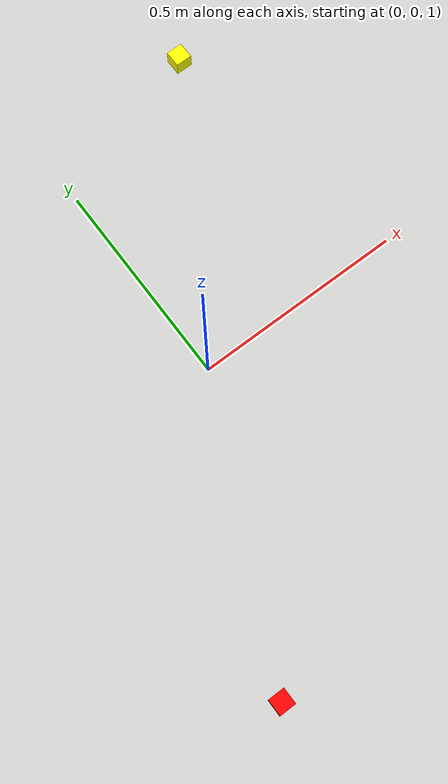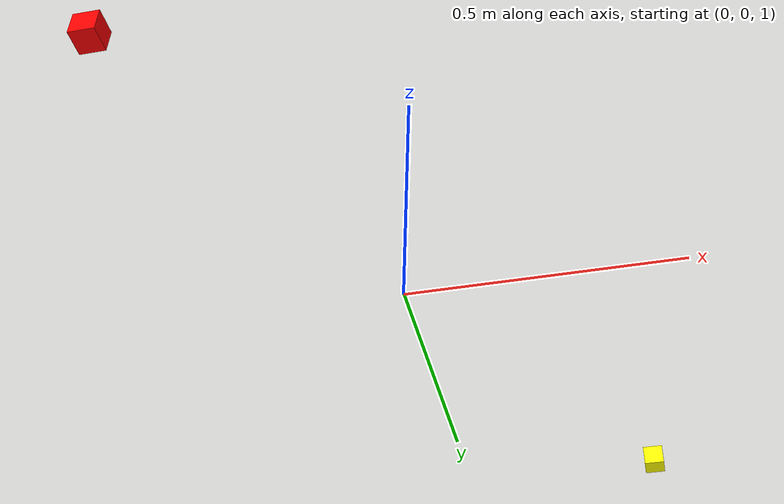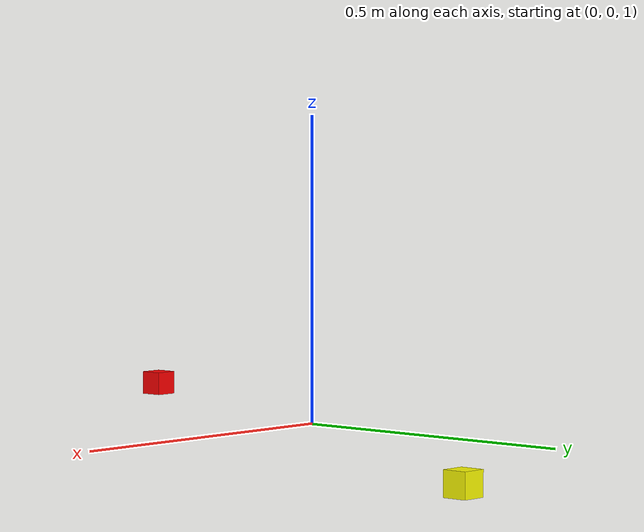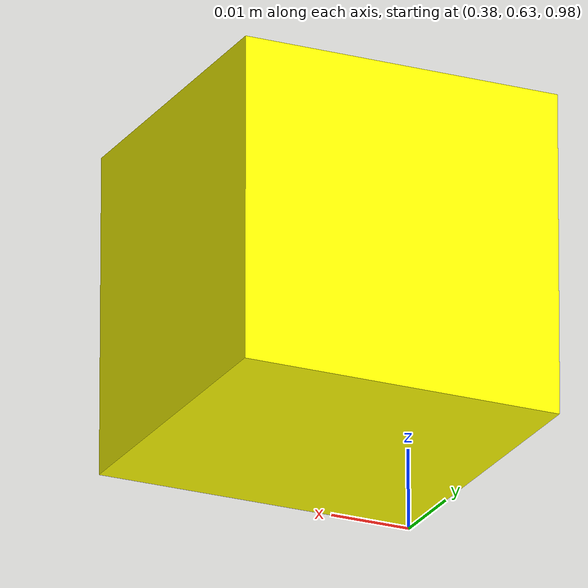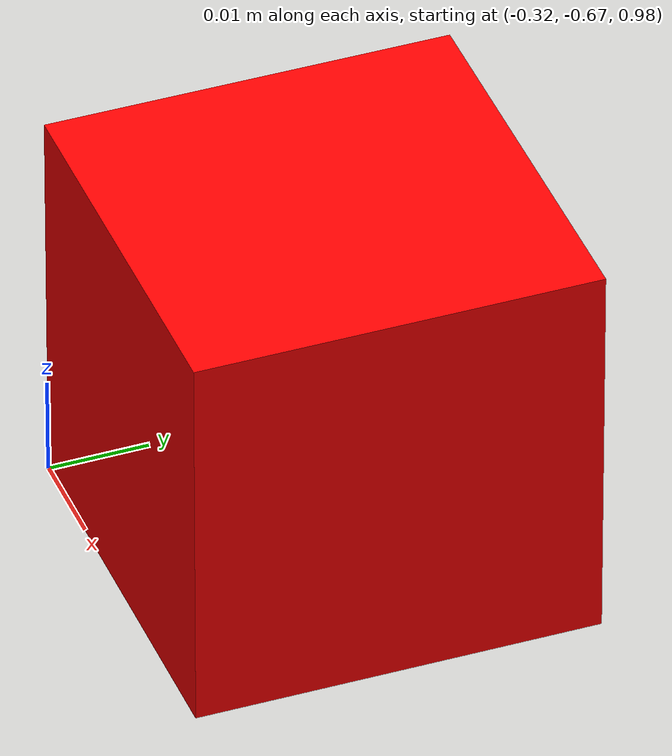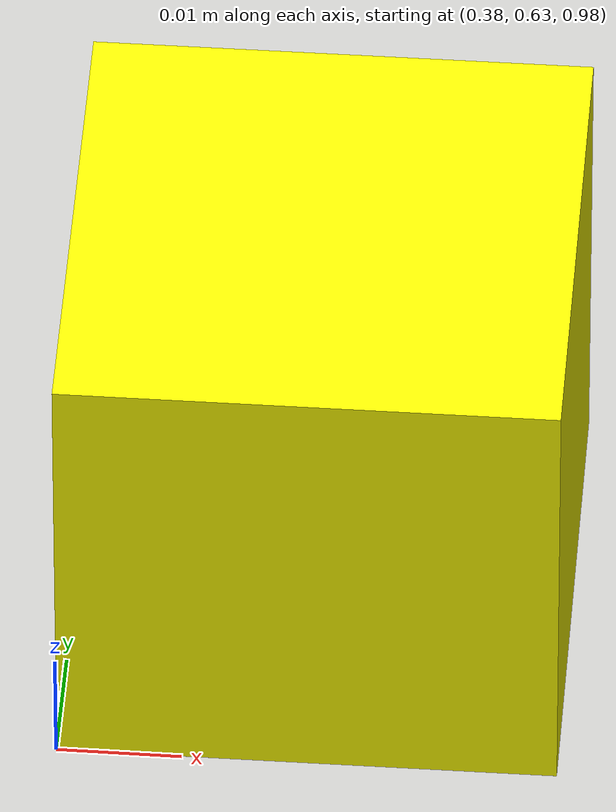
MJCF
<?xml version='1.0' encoding='utf-8'?>
<mujoco model="banana_1">
  <asset>
  </asset>
  <worldbody>
    <body name="object_red_0" pos="-0.3 -0.65 1.0">
        <joint name="object_red_0_joint" type="free" damping="0.0005" />
        <geom type="box" size="0.02 0.02 0.02" rgba="1 0 0 1" density="100" friction="0.95 0.3 0.1" group="1" />
    </body>
    <body name="object_yellow_0" pos="0.4 0.65 1.0">
        <joint name="object_yellow_0_joint" type="free" damping="0.0005" />
        <geom type="box" size="0.02 0.02 0.02" rgba="1 1 0 1" density="100" friction="0.95 0.3 0.1" group="1" />
    </body>
  </worldbody>
</mujoco>
